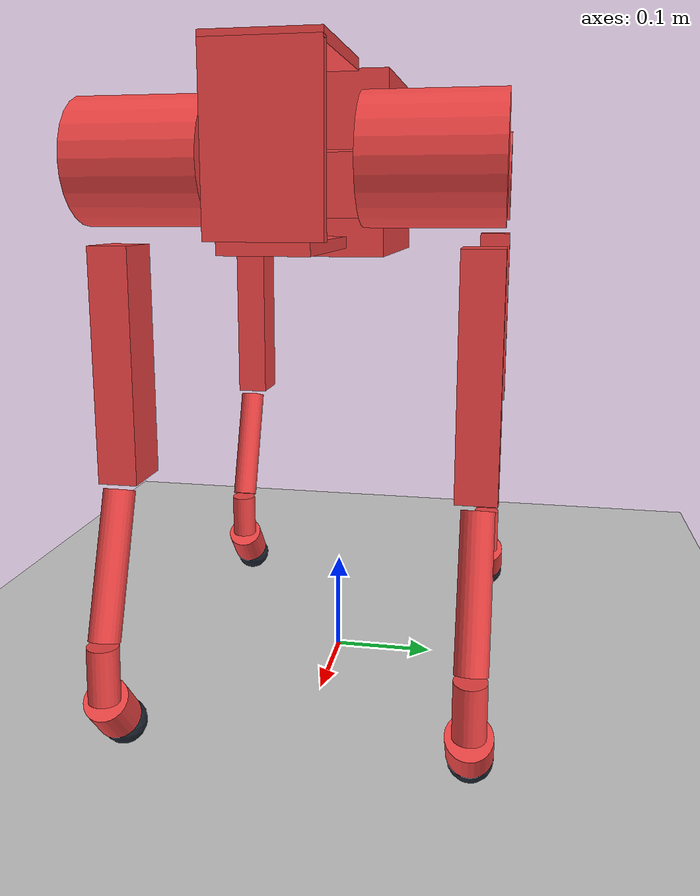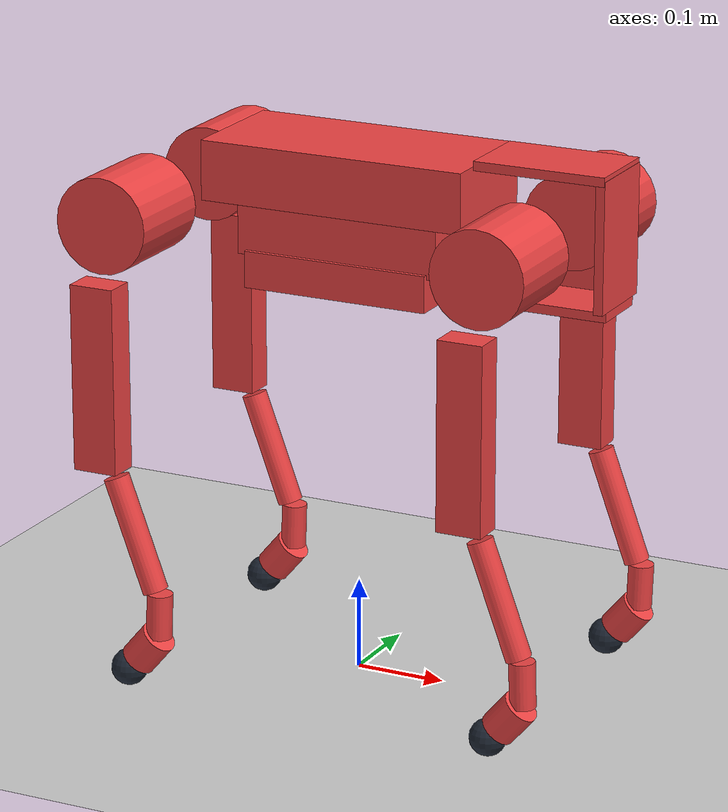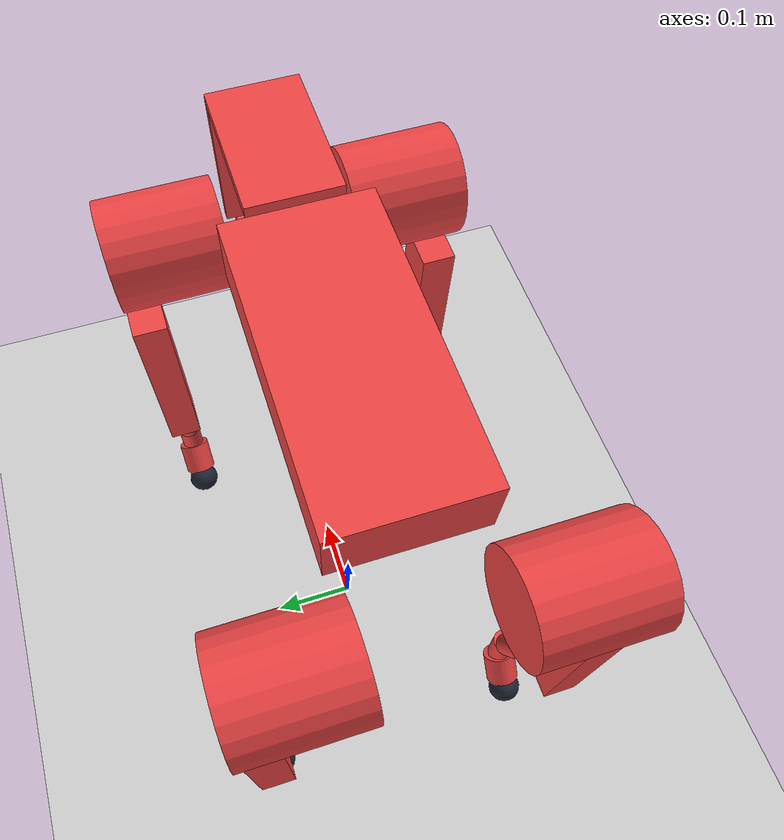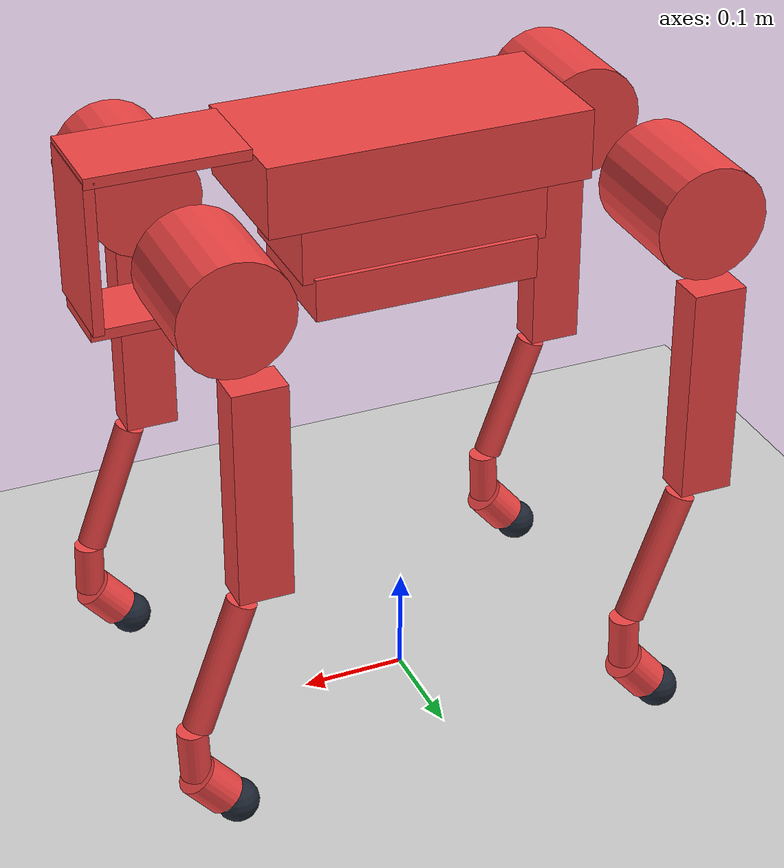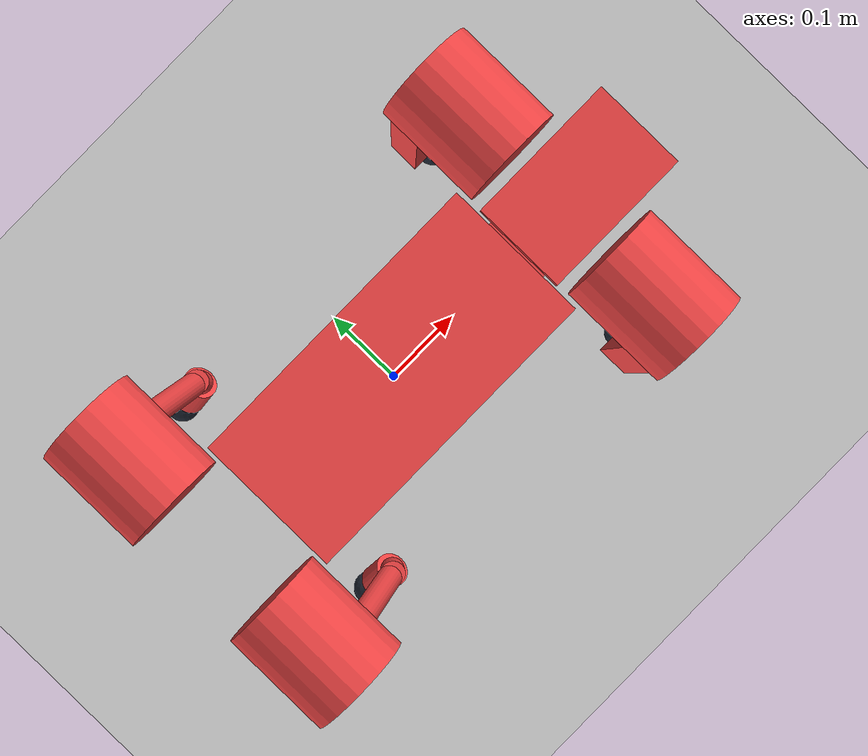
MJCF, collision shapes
<mujoco model="black_flat_scene">
  <include file="../models/black_description.xml"/>

  <compiler meshdir="../models/meshes"/>

  <option timestep="0.002" gravity="0 0 -9.81" integrator="implicitfast"/>

  <asset>
    <texture name="floor_grid" type="2d" builtin="checker" width="256" height="256"
             rgb1="0.85 0.85 0.85" rgb2="0.62 0.62 0.64"/>
    <material name="floor_grid_mat" texture="floor_grid" texrepeat="4 4" rgba="1 1 1 1"/>
  </asset>

  <visual>
    <headlight diffuse="0.6 0.6 0.6" ambient="0.3 0.3 0.3" specular="0 0 0"/>
    <global azimuth="120" elevation="-20" offwidth="1280" offheight="720"/>
  </visual>

  <worldbody>
    <light name="top" pos="0 0 3" dir="0 0 -1" directional="true"/>
    <geom name="floor" type="plane" size="5 5 0.1" rgba="0.8 0.8 0.8 1"
          condim="3" friction="1 0.005 0.0001"/>
  </worldbody>

  <keyframe>
    <key name="rest" qpos="0 0 0.1449 1 0 0 0.0015
                            0.5014  1.6008 -2.5542
                           -0.5014 -1.6008  2.5542
                            0.5014 -1.6008  2.5542
                           -0.5014  1.6008 -2.5542"/>
  </keyframe>
</mujoco>

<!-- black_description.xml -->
<mujoco model="GO 2026_4_12">
  <compiler angle="radian" meshdir="meshes/" inertiafromgeom="auto" inertiagrouprange="3 3" />
  <asset>
    <mesh name="trunk" file="trunk.STL" />
    <mesh name="d435" file="d435.stl" />
    <mesh name="FL_hip" file="FL_hip.STL" />
    <mesh name="FL_thigh" file="FL_thigh.STL" />
    <mesh name="FL_calf" file="FL_calf.STL" />
    <mesh name="FR_hip" file="FR_hip.STL" />
    <mesh name="FR_thigh" file="FR_thigh.STL" />
    <mesh name="FR_calf" file="FR_calf.STL" />
    <mesh name="RR_hip" file="RR_hip.STL" />
    <mesh name="RR_thigh" file="RR_thigh.STL" />
    <mesh name="RR_calf" file="RR_calf.STL" />
    <mesh name="RL_hip" file="RL_hip.STL" />
    <mesh name="RL_thigh" file="RL_thigh.STL" />
    <mesh name="RL_calf" file="RL_calf.STL" />
    <material name="trunk_mat" rgba="0.75294 0.75294 0.75294 1" specular="0" />
    <material name="imu_link_mat" rgba="0.80000392 0.00000392 0.00000392 1" specular="0" />
    <material name="d435_link_mat" rgba="0.15 0.15 0.15 1" specular="0" />
    <material name="FL_hip_mat" rgba="0.75294 0.75294 0.75294 1" specular="0" />
    <material name="FL_thigh_mat" rgba="0.75294 0.75294 0.75294 1" specular="0" />
    <material name="FL_calf_mat" rgba="0.75294 0.75294 0.75294 1" specular="0" />
    <material name="FL_foot_mat" rgba="0.11765098 0.14902353 0.20000392 1" specular="0" />
    <material name="FR_hip_mat" rgba="0.75294 0.75294 0.75294 1" specular="0" />
    <material name="FR_thigh_mat" rgba="0.75294 0.75294 0.75294 1" specular="0" />
    <material name="FR_calf_mat" rgba="0.75294 0.75294 0.75294 1" specular="0" />
    <material name="FR_foot_mat" rgba="0.11765098 0.14902353 0.20000392 1" specular="0" />
    <material name="RR_hip_mat" rgba="0.75294 0.75294 0.75294 1" specular="0" />
    <material name="RR_thigh_mat" rgba="0.75294 0.75294 0.75294 1" specular="0" />
    <material name="RR_calf_mat" rgba="0.75294 0.75294 0.75294 1" specular="0" />
    <material name="RR_foot_mat" rgba="0.11765098 0.14902353 0.20000392 1" specular="0" />
    <material name="RL_hip_mat" rgba="0.75294 0.75294 0.75294 1" specular="0" />
    <material name="RL_thigh_mat" rgba="0.75294 0.75294 0.75294 1" specular="0" />
    <material name="RL_calf_mat" rgba="0.75294 0.75294 0.75294 1" specular="0" />
    <material name="RL_foot_mat" rgba="0.11765098 0.14902353 0.20000392 1" specular="0" />
  </asset>

<worldbody>
    <body name="trunk" pos="0 0 0.578580">
      <freejoint/>
      <inertial pos="-0.013095 -0.00005 -0.074252" mass="5.7042" fullinertia="0.0092853 0.0076386 0.012703 -0.0000026 0.0000017 -0.0000276"/>
      <geom pos="0 0 0" group="1" contype="0" conaffinity="0" mass="0" material="trunk_mat" type="mesh" mesh="trunk" />
      <geom pos="0 0 -0.02" rgba="0.9372549019607843 0.26666666666666666 0.26666666666666666 1" group="3" contype="1" conaffinity="1" type="box" size="0.15 0.07 0.0325" />
      <geom pos="0 0 -0.08" rgba="0.9372549019607843 0.26666666666666666 0.26666666666666666 1" group="3" contype="1" conaffinity="1" type="box" size="0.115 0.055 0.03" />
      <geom pos="0 0 -0.125" rgba="0.9372549019607843 0.26666666666666666 0.26666666666666666 1" group="3" contype="1" conaffinity="1" type="box" size="0.105 0.06 0.02" />
      <geom pos="0.225 0 -0.13" rgba="0.9372549019607843 0.26666666666666666 0.26666666666666666 1" group="3" contype="1" conaffinity="1" type="box" size="0.0725 0.035 0.005" />
      <geom pos="0.225 0 0.015" rgba="0.9372549019607843 0.26666666666666666 0.26666666666666666 1" group="3" contype="1" conaffinity="1" type="box" size="0.0725 0.045 0.005" />
      <geom pos="0.293 0 -0.055" rgba="0.9372549019607843 0.26666666666666666 0.26666666666666666 1" group="3" contype="1" conaffinity="1" type="box" size="0.005 0.045 0.07" />
      <body name="imu_link" pos="0 0 0">
        <inertial pos="0 0 0" mass="0.001" diaginertia="0.0001 0.0001 0.0001"/>
        <geom pos="0 0 0" group="1" contype="0" conaffinity="0" material="imu_link_mat" type="box" size="0.0005 0.0005 0.0005" />
        <site name="imu" pos="0 0 0" size="0.005"/>
      </body>
      <body name="d435_link" pos="0.225 0 0.028">
        <inertial pos="0 0 -0.0125" mass="0.072" diaginertia="0.00002 0.00006 0.00006"/>
        <geom pos="0.07 0 -0.08" quat="0.3467427097424935 0.6162544171345802 0.6162544006221071 0.34674270045155864" group="1" contype="0" conaffinity="0" material="d435_link_mat" type="mesh" mesh="d435" />
      </body>
      <body name="FL_hip" pos="0.1566 0.060001 -0.06425">
        <joint name="FL_hip_joint" type="hinge" axis="1 0 0" limited="true" range="-0.5 0.5" damping="0" frictionloss="0"/>
        <inertial pos="0.05138 0.014784 0.0000566" mass="0.60559" fullinertia="0.0003742 0.0006493 0.0003415 -0.0000088 0.000001 -1e-7"/>
        <geom pos="0 0 0" group="1" contype="0" conaffinity="0" mass="0" material="FL_hip_mat" type="mesh" mesh="FL_hip" />
        <geom pos="0.058 0.055 0" quat="0.707106790659974 0.707106771713121 0 0" rgba="0.9372549019607843 0.26666666666666666 0.26666666666666666 1" group="3" contype="1" conaffinity="1" type="cylinder" size="0.052 0.055" />
        <body name="FL_thigh" pos="0.056 0.0336 0" quat="0.7071054825112363 0 0 0.7071080798594735">
          <joint name="FL_thigh_joint" type="hinge" axis="1 0 0" limited="true" range="-1.2 1.6" damping="0" frictionloss="0"/>
          <inertial pos="0.041449 0.004453 -0.021946" mass="0.91168" fullinertia="0.0018577 0.0013983 0.0005179 0 -2e-7 0.0000051"/>
          <geom pos="0 0 0" group="1" contype="0" conaffinity="0" mass="0" material="FL_thigh_mat" type="mesh" mesh="FL_thigh" />
          <geom pos="0.06 0.015 -0.17" rgba="0.9372549019607843 0.26666666666666666 0.26666666666666666 1" group="3" contype="1" conaffinity="1" type="box" size="0.0175 0.025 0.1025" />
          <body name="FL_calf" pos="0.0618 0 -0.25">
            <joint name="FL_calf_joint" type="hinge" axis="1 0 0" limited="true" range="-2.5 -0.85" damping="0" frictionloss="0"/>
            <inertial pos="0.0000772 -0.024754 -0.14833" mass="0.24861" fullinertia="0.000929 0.0008561 0.0000889 0 0 -0.0002168"/>
            <geom pos="0 0 0" group="1" contype="0" conaffinity="0" mass="0" material="FL_calf_mat" type="mesh" mesh="FL_calf" />
            <geom pos="0 -0.025 -0.09" quat="0.9843036025039885 -0.1764834782569469 0 0" rgba="0.9372549019607843 0.26666666666666666 0.26666666666666666 1" group="3" contype="1" conaffinity="1" type="cylinder" size="0.014 0.065" />
            <geom pos="0 -0.052 -0.178" quat="0.9998507261131488 0.01727789023605295 0 0" rgba="0.9372549019607843 0.26666666666666666 0.26666666666666666 1" group="3" contype="1" conaffinity="1" type="cylinder" size="0.014 0.025" />
            <geom pos="0 -0.038 -0.218" quat="0.9396926209223285 0.34202014295085736 0 0" rgba="0.9372549019607843 0.26666666666666666 0.26666666666666666 1" group="3" contype="1" conaffinity="1" type="cylinder" size="0.02 0.02" />
            <body name="FL_foot" pos="0 -0.013803 -0.24433">
              <inertial pos="0 0 0" mass="0.1" diaginertia="0.000016 0.000016 0.000016"/>
              <geom pos="0 0 0" group="1" contype="0" conaffinity="0" mass="0" material="FL_foot_mat" type="sphere" size="0.02" />
              <geom pos="0 0 0" rgba="0.9372549019607843 0.26666666666666666 0.26666666666666666 1" group="3" contype="1" conaffinity="1" type="sphere" size="0.02" />
            </body>
          </body>
        </body>
      </body>
      <body name="FR_hip" pos="0.1566 -0.059999 -0.06425">
        <joint name="FR_hip_joint" type="hinge" axis="1 0 0" limited="true" range="-0.5 0.5" damping="0" frictionloss="0"/>
        <inertial pos="0.05138 -0.014784 -0.0000566" mass="0.60559" fullinertia="0.0003742 0.0006493 0.0003415 0.0000088 -0.000001 -1e-7"/>
        <geom pos="0 0 0" group="1" contype="0" conaffinity="0" mass="0" material="FR_hip_mat" type="mesh" mesh="FR_hip" />
        <geom pos="0.058 -0.055 0" quat="0.707106790659974 0.707106771713121 0 0" rgba="0.9372549019607843 0.26666666666666666 0.26666666666666666 1" group="3" contype="1" conaffinity="1" type="cylinder" size="0.052 0.055" />
        <body name="FR_thigh" pos="0.056 -0.0336 0" quat="0.7071054825112363 0 0 -0.7071080798594735">
          <joint name="FR_thigh_joint" type="hinge" axis="1 0 0" limited="true" range="-1.6 1.2" damping="0" frictionloss="0"/>
          <inertial pos="0.04152 -0.0043781 -0.022024" mass="0.91491" fullinertia="0.0018577 0.0013991 0.0005172 -1e-7 -2e-7 -0.0000031"/>
          <geom pos="0 0 0" group="1" contype="0" conaffinity="0" mass="0" material="FR_thigh_mat" type="mesh" mesh="FR_thigh" />
          <geom pos="0.06 -0.015 -0.17" rgba="0.9372549019607843 0.26666666666666666 0.26666666666666666 1" group="3" contype="1" conaffinity="1" type="box" size="0.0175 0.025 0.1025" />
          <body name="FR_calf" pos="0.0618 0 -0.25">
            <joint name="FR_calf_joint" type="hinge" axis="1 0 0" limited="true" range="0.85 2.5" damping="0" frictionloss="0"/>
            <inertial pos="-0.0000772 0.024754 -0.14833" mass="0.24861" fullinertia="0.000929 0.0008561 0.0000889 0 0 0.0002168"/>
            <geom pos="0 0 0" group="1" contype="0" conaffinity="0" mass="0" material="FR_calf_mat" type="mesh" mesh="FR_calf" />
            <geom pos="0 0.025 -0.09" quat="0.9843036025039885 0.1764834782569469 0 0" rgba="0.9372549019607843 0.26666666666666666 0.26666666666666666 1" group="3" contype="1" conaffinity="1" type="cylinder" size="0.014 0.065" />
            <geom pos="0 0.052 -0.178" quat="0.9998507261131488 0.01727789023605295 0 0" rgba="0.9372549019607843 0.26666666666666666 0.26666666666666666 1" group="3" contype="1" conaffinity="1" type="cylinder" size="0.014 0.025" />
            <geom pos="0 0.038 -0.218" quat="0.9396926209223285 -0.34202014295085736 0 0" rgba="0.9372549019607843 0.26666666666666666 0.26666666666666666 1" group="3" contype="1" conaffinity="1" type="cylinder" size="0.02 0.02" />
            <body name="FR_foot" pos="0 0.013803 -0.24433">
              <inertial pos="0 0 0" mass="0.1" diaginertia="0.000016 0.000016 0.000016"/>
              <geom pos="0 0 0" group="1" contype="0" conaffinity="0" mass="0" material="FR_foot_mat" type="sphere" size="0.02" />
              <geom pos="0 0 0" rgba="0.9372549019607843 0.26666666666666666 0.26666666666666666 1" group="3" contype="1" conaffinity="1" type="sphere" size="0.02" />
            </body>
          </body>
        </body>
      </body>
      <body name="RR_hip" pos="-0.1566 -0.059999 -0.06425" quat="-0.000003673205103346574 0 0 -0.9999999999932537">
        <joint name="RR_hip_joint" type="hinge" axis="1 0 0" limited="true" range="-0.5 0.5" damping="0" frictionloss="0"/>
        <inertial pos="0.05138 0.014784 0.0000566" mass="0.60559" fullinertia="0.0003742 0.0006493 0.0003415 -0.0000088 0.000001 -1e-7"/>
        <geom pos="0 0 0" group="1" contype="0" conaffinity="0" mass="0" material="RR_hip_mat" type="mesh" mesh="RR_hip" />
        <geom pos="0.058 0.055 0" quat="0.707106790659974 0.707106771713121 0 0" rgba="0.9372549019607843 0.26666666666666666 0.26666666666666666 1" group="3" contype="1" conaffinity="1" type="cylinder" size="0.052 0.055" />
        <body name="RR_thigh" pos="0.056 0.0336 0" quat="0.7071054825112363 0 0 0.7071080798594735">
          <joint name="RR_thigh_joint" type="hinge" axis="1 0 0" limited="true" range="-1.6 1.2" damping="0" frictionloss="0"/>
          <inertial pos="0.04152 -0.0043784 -0.022024" mass="0.91491" fullinertia="0.0018577 0.0013991 0.0005172 -1e-7 -2e-7 -0.0000031"/>
          <geom pos="0 0 0" group="1" contype="0" conaffinity="0" mass="0" material="RR_thigh_mat" type="mesh" mesh="RR_thigh" />
          <geom pos="0.06 -0.015 -0.17" rgba="0.9372549019607843 0.26666666666666666 0.26666666666666666 1" group="3" contype="1" conaffinity="1" type="box" size="0.0175 0.025 0.1025" />
          <body name="RR_calf" pos="0.0618 0 -0.25">
            <joint name="RR_calf_joint" type="hinge" axis="1 0 0" limited="true" range="0.85 2.5" damping="0" frictionloss="0"/>
            <inertial pos="-0.0000772 0.024754 -0.14833" mass="0.24861" fullinertia="0.000929 0.0008561 0.0000889 0 0 0.0002168"/>
            <geom pos="0 0 0" group="1" contype="0" conaffinity="0" mass="0" material="RR_calf_mat" type="mesh" mesh="RR_calf" />
            <geom pos="0 0.025 -0.09" quat="0.9843036025039885 0.1764834782569469 0 0" rgba="0.9372549019607843 0.26666666666666666 0.26666666666666666 1" group="3" contype="1" conaffinity="1" type="cylinder" size="0.014 0.065" />
            <geom pos="0 0.052 -0.178" quat="0.9998507261131488 -0.01727789023605295 0 0" rgba="0.9372549019607843 0.26666666666666666 0.26666666666666666 1" group="3" contype="1" conaffinity="1" type="cylinder" size="0.014 0.025" />
            <geom pos="0 0.038 -0.218" quat="0.9396926209223285 -0.34202014295085736 0 0" rgba="0.9372549019607843 0.26666666666666666 0.26666666666666666 1" group="3" contype="1" conaffinity="1" type="cylinder" size="0.02 0.02" />
            <body name="RR_foot" pos="0 0.013803 -0.24433">
              <inertial pos="0 0 0" mass="0.1" diaginertia="0.000016 0.000016 0.000016"/>
              <geom pos="0 0 0" group="1" contype="0" conaffinity="0" mass="0" material="RR_foot_mat" type="sphere" size="0.02" />
              <geom pos="0 0 0" rgba="0.9372549019607843 0.26666666666666666 0.26666666666666666 1" group="3" contype="1" conaffinity="1" type="sphere" size="0.02" />
            </body>
          </body>
        </body>
      </body>
      <body name="RL_hip" pos="-0.1566 0.060001 -0.06425" quat="-0.000003673205103346574 0 0 -0.9999999999932537">
        <joint name="RL_hip_joint" type="hinge" axis="1 0 0" limited="true" range="-0.5 0.5" damping="0" frictionloss="0"/>
        <inertial pos="0.05138 -0.014784 -0.0000566" mass="0.60559" fullinertia="0.0003742 0.0006493 0.0003415 0.0000088 -0.000001 -1e-7"/>
        <geom pos="0 0 0" group="1" contype="0" conaffinity="0" mass="0" material="RL_hip_mat" type="mesh" mesh="RL_hip" />
        <geom pos="0.058 -0.055 0" quat="0.707106790659974 0.707106771713121 0 0" rgba="0.9372549019607843 0.26666666666666666 0.26666666666666666 1" group="3" contype="1" conaffinity="1" type="cylinder" size="0.052 0.055" />
        <body name="RL_thigh" pos="0.056 -0.0336 0" quat="0.7071054825112363 0 0 -0.7071080798594735">
          <joint name="RL_thigh_joint" type="hinge" axis="1 0 0" limited="true" range="-1.2 1.6" damping="0" frictionloss="0"/>
          <inertial pos="0.041449 0.0044527 -0.021947" mass="0.91168" fullinertia="0.0018577 0.0013983 0.0005179 0 -2e-7 0.0000051"/>
          <geom pos="0 0 0" group="1" contype="0" conaffinity="0" mass="0" material="RL_thigh_mat" type="mesh" mesh="RL_thigh" />
          <geom pos="0.06 0.015 -0.17" rgba="0.9372549019607843 0.26666666666666666 0.26666666666666666 1" group="3" contype="1" conaffinity="1" type="box" size="0.0175 0.025 0.1025" />
          <body name="RL_calf" pos="0.0618 0 -0.25">
            <joint name="RL_calf_joint" type="hinge" axis="1 0 0" limited="true" range="-2.5 -0.85" damping="0" frictionloss="0"/>
            <inertial pos="0.0000772 -0.024754 -0.14833" mass="0.24861" fullinertia="0.000929 0.0008561 0.0000889 0 0 -0.0002168"/>
            <geom pos="0 0 0" group="1" contype="0" conaffinity="0" mass="0" material="RL_calf_mat" type="mesh" mesh="RL_calf" />
            <geom pos="0 -0.025 -0.09" quat="0.9843036025039885 -0.1764834782569469 0 0" rgba="0.9372549019607843 0.26666666666666666 0.26666666666666666 1" group="3" contype="1" conaffinity="1" type="cylinder" size="0.014 0.065" />
            <geom pos="0 -0.052 -0.178" quat="0.9998507261131488 0.01727789023605295 0 0" rgba="0.9372549019607843 0.26666666666666666 0.26666666666666666 1" group="3" contype="1" conaffinity="1" type="cylinder" size="0.014 0.025" />
            <geom pos="0 -0.038 -0.218" quat="0.9396926209223285 0.34202014295085736 0 0" rgba="0.9372549019607843 0.26666666666666666 0.26666666666666666 1" group="3" contype="1" conaffinity="1" type="cylinder" size="0.02 0.02" />
            <body name="RL_foot" pos="0 -0.013803 -0.24433">
              <inertial pos="0 0 0" mass="0.1" diaginertia="0.000016 0.000016 0.000016"/>
              <geom pos="0 0 0" group="1" contype="0" conaffinity="0" mass="0" material="RL_foot_mat" type="sphere" size="0.02" />
              <geom pos="0 0 0" rgba="0.9372549019607843 0.26666666666666666 0.26666666666666666 1" group="3" contype="1" conaffinity="1" type="sphere" size="0.02" />
            </body>
          </body>
        </body>
      </body>
    </body>
  </worldbody>
  <actuator>
    <motor name="FL_hip_joint_motor" joint="FL_hip_joint" gear="1" ctrllimited="true" ctrlrange="-20 20" />
    <motor name="FL_thigh_joint_motor" joint="FL_thigh_joint" gear="1" ctrllimited="true" ctrlrange="-20 20" />
    <motor name="FL_calf_joint_motor" joint="FL_calf_joint" gear="1" ctrllimited="true" ctrlrange="-20 20" />
    <motor name="FR_hip_joint_motor" joint="FR_hip_joint" gear="1" ctrllimited="true" ctrlrange="-20 20" />
    <motor name="FR_thigh_joint_motor" joint="FR_thigh_joint" gear="1" ctrllimited="true" ctrlrange="-20 20" />
    <motor name="FR_calf_joint_motor" joint="FR_calf_joint" gear="1" ctrllimited="true" ctrlrange="-20 20" />
    <motor name="RR_hip_joint_motor" joint="RR_hip_joint" gear="1" ctrllimited="true" ctrlrange="-20 20" />
    <motor name="RR_thigh_joint_motor" joint="RR_thigh_joint" gear="1" ctrllimited="true" ctrlrange="-20 20" />
    <motor name="RR_calf_joint_motor" joint="RR_calf_joint" gear="1" ctrllimited="true" ctrlrange="-20 20" />
    <motor name="RL_hip_joint_motor" joint="RL_hip_joint" gear="1" ctrllimited="true" ctrlrange="-20 20" />
    <motor name="RL_thigh_joint_motor" joint="RL_thigh_joint" gear="1" ctrllimited="true" ctrlrange="-20 20" />
    <motor name="RL_calf_joint_motor" joint="RL_calf_joint" gear="1" ctrllimited="true" ctrlrange="-20 20" />
  </actuator>

  <sensor>
    <framequat name="imu_quat" objtype="site" objname="imu"/>
    <gyro name="imu_gyro" site="imu"/>
    <accelerometer name="imu_acc" site="imu"/>
  </sensor>
</mujoco>
